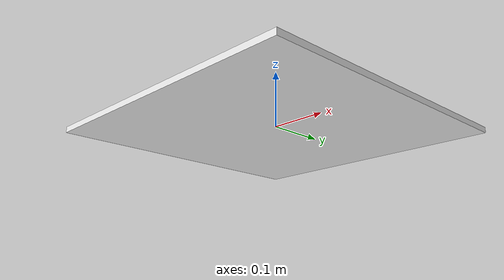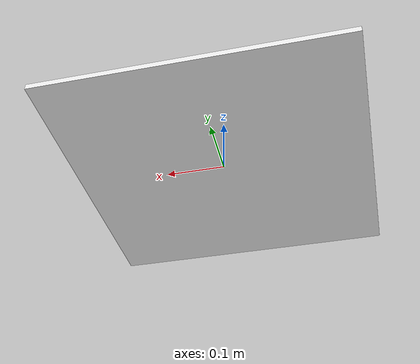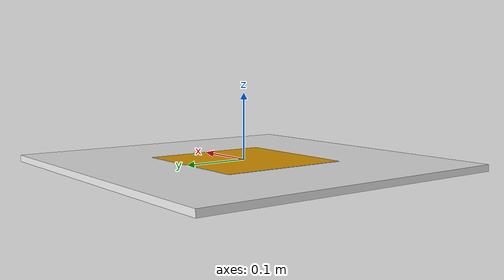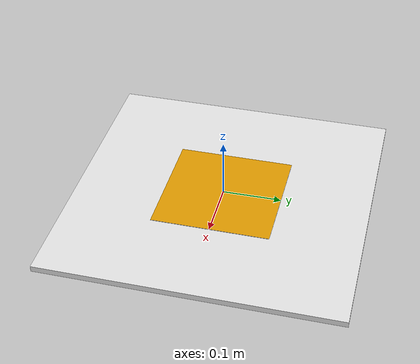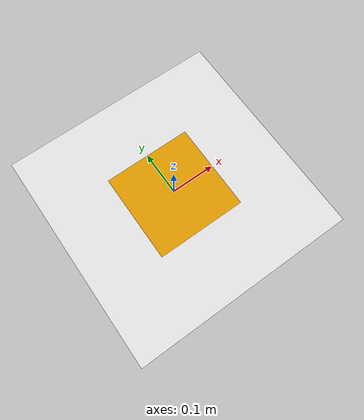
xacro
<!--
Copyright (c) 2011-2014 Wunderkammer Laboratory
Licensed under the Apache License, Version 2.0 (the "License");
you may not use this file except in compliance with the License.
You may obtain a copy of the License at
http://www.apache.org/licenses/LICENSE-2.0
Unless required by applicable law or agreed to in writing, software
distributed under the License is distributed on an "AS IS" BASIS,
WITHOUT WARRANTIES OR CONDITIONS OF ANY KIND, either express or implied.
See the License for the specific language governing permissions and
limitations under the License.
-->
<?xml version="1.0"?>

<robot name="ugv" xmlns:xacro="http://www.ros.org/wiki/xacro">
  <!-- Degree-to-radian conversions -->
  <xacro:property name="degrees_45" value="0.785398163"/>
  <xacro:property name="degrees_90" value="1.57079633"/>

  <!-- chassis_length is measured along the x axis, chassis_width
       along the y axis, and chassis_height along the z axis. -->
  <xacro:property name="chassis_length" value="0.5"/>
  <xacro:property name="chassis_width" value="0.5"/>
  <xacro:property name="chassis_height" value="0.01"/>
  <xacro:property name="chassis_mass" value="2.788"/>

  <xacro:macro name="solid_cuboid_inertial"
               params="width depth height mass *origin">
    <inertial>
      <xacro:insert_block name="origin"/>
      <mass value="${mass}"/>
      <inertia ixx="${mass * (depth * depth + height * height) / 12}"
               ixy="0" ixz="0"
               iyy="${mass * (width * width + height * height) / 12}"
               iyz="0"
               izz="${mass * (width * width + depth * depth) / 12}"/>
    </inertial>
  </xacro:macro>

  <link name="base_link">
    <visual>
      <geometry>
        <mesh filename="package://ackermann_vehicle_description/meshes/april_tag2.dae"/>
        <color rgba="0.5 0.5 0.5 1"/>
      </geometry>
    </visual>
  </link>
    <gazebo reference="base_link">
    <material>
      <emissive>1 1 1 1</emissive>
      <ambient>1 1 1 1</ambient>
    </material>
  </gazebo>

  <!-- Chassis -->
  <link name="chassis">
    <visual>
      <origin xyz="0 0 ${-chassis_height / 2}"/>
      <geometry>
        <box size="${chassis_length} ${chassis_width} ${chassis_height}"/>
      </geometry>
      <material name="tag"/>
    </visual>

    <collision>
      <origin xyz="0 0 ${-chassis_height / 2}"/>
      <geometry>
        <box size="${chassis_length} ${chassis_width} ${chassis_height}"/>
      </geometry>
    </collision>

    <xacro:solid_cuboid_inertial
        width="${chassis_length}" depth="${chassis_width}"
        height="${chassis_height}" mass="${chassis_mass}">
      <origin xyz="0 0 ${-chassis_height / 2}"/>
    </xacro:solid_cuboid_inertial>
  </link>
  <gazebo reference="chassis">
    <material>Gazebo/White</material>
  </gazebo>

  <joint name="base_link_to_chassis" type="fixed">
    <parent link="base_link"/>
    <child link="chassis"/>
  </joint>

</robot>
